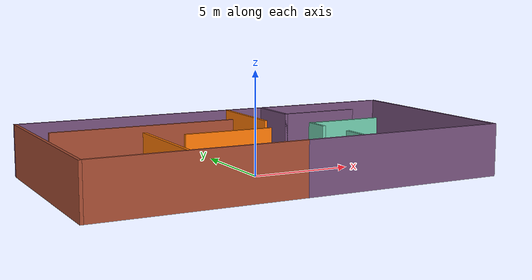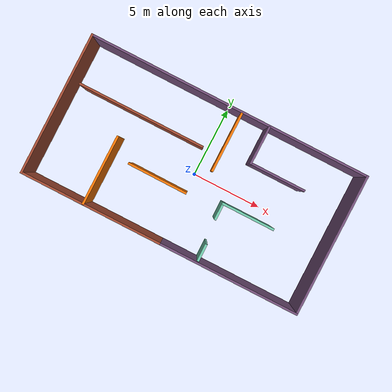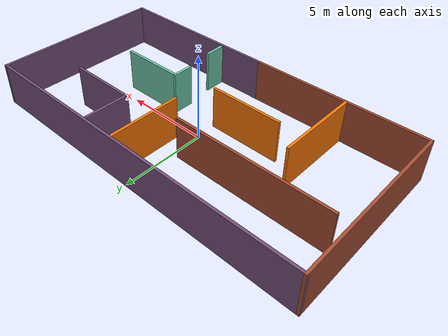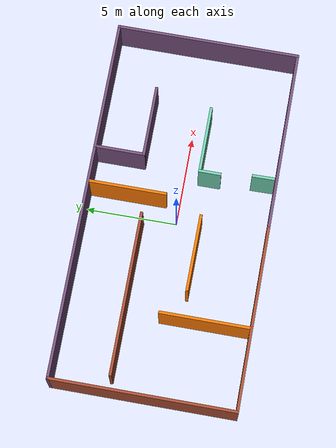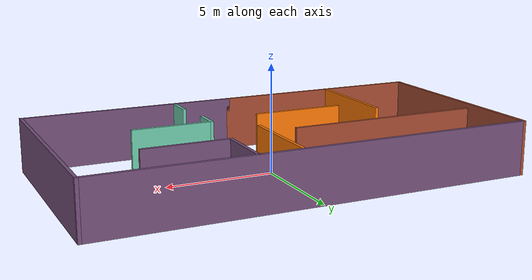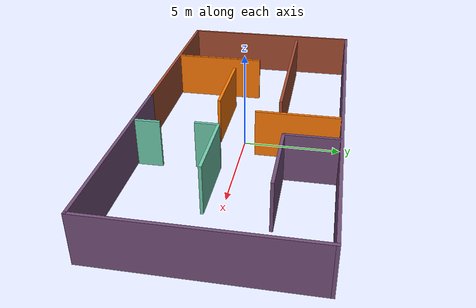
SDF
<?xml version='1.0'?>
<sdf version='1.6'>
  <model name='Environment'>
    <link name='Wall_10'>
      <pose frame=''>0.922209 2.8186 0 0 0 -1.5708</pose>
      <self_collide>0</self_collide>
      <enable_wind>0</enable_wind>
      <kinematic>0</kinematic>
      <visual name='Wall_10_Visual'>
        <pose frame=''>0 0 1.25 0 -0 0</pose>
        <geometry>
          <box>
            <size>4.25 0.15 2.5</size>
          </box>
        </geometry>
        <material>
          <script>
            <uri>file://media/materials/scripts/gazebo.material</uri>
            <name>Gazebo/Grey</name>
          </script>
          <ambient>0.996078 0.47451 0.0196078 1</ambient>
          <shader type='pixel'/>
        </material>
        <meta>
          <layer>0</layer>
        </meta>
        <transparency>0</transparency>
        <cast_shadows>1</cast_shadows>
      </visual>
      <collision name='Wall_10_Collision'>
        <laser_retro>0</laser_retro>
        <max_contacts>10</max_contacts>
        <pose frame=''>0 0 1.25 0 -0 0</pose>
        <geometry>
          <box>
            <size>4.25 0.15 2.5</size>
          </box>
        </geometry>
        <surface>
          <friction>
            <ode>
              <mu>1</mu>
              <mu2>1</mu2>
              <fdir1>0 0 0</fdir1>
              <slip1>0</slip1>
              <slip2>0</slip2>
            </ode>
            <torsional>
              <coefficient>1</coefficient>
              <patch_radius>0</patch_radius>
              <surface_radius>0</surface_radius>
              <use_patch_radius>1</use_patch_radius>
              <ode>
                <slip>0</slip>
              </ode>
            </torsional>
          </friction>
          <bounce>
            <restitution_coefficient>0</restitution_coefficient>
            <threshold>1e+06</threshold>
          </bounce>
          <contact>
            <collide_without_contact>0</collide_without_contact>
            <collide_without_contact_bitmask>1</collide_without_contact_bitmask>
            <collide_bitmask>1</collide_bitmask>
            <ode>
              <soft_cfm>0</soft_cfm>
              <soft_erp>0.2</soft_erp>
              <kp>1e+13</kp>
              <kd>1</kd>
              <max_vel>0.01</max_vel>
              <min_depth>0</min_depth>
            </ode>
            <bullet>
              <split_impulse>1</split_impulse>
              <split_impulse_penetration_threshold>-0.01</split_impulse_penetration_threshold>
              <soft_cfm>0</soft_cfm>
              <soft_erp>0.2</soft_erp>
              <kp>1e+13</kp>
              <kd>1</kd>
            </bullet>
          </contact>
        </surface>
      </collision>
    </link>
    <link name='Wall_10_clone'>
      <pose frame=''>-2.02038 -1.31568 0 0 -0 3.13656</pose>
      <self_collide>0</self_collide>
      <enable_wind>0</enable_wind>
      <kinematic>0</kinematic>
      <visual name='Wall_10_Visual'>
        <pose frame=''>0 0 1.25 0 -0 0</pose>
        <geometry>
          <box>
            <size>4.25 0.15 2.5</size>
          </box>
        </geometry>
        <material>
          <script>
            <uri>file://media/materials/scripts/gazebo.material</uri>
            <name>Gazebo/Grey</name>
          </script>
          <ambient>0.996078 0.47451 0.0196078 1</ambient>
          <shader type='pixel'/>
        </material>
        <meta>
          <layer>0</layer>
        </meta>
        <transparency>0</transparency>
        <cast_shadows>1</cast_shadows>
      </visual>
      <collision name='Wall_10_Collision'>
        <laser_retro>0</laser_retro>
        <max_contacts>10</max_contacts>
        <pose frame=''>0 0 1.25 0 -0 0</pose>
        <geometry>
          <box>
            <size>4.25 0.15 2.5</size>
          </box>
        </geometry>
        <surface>
          <friction>
            <ode>
              <mu>1</mu>
              <mu2>1</mu2>
              <fdir1>0 0 0</fdir1>
              <slip1>0</slip1>
              <slip2>0</slip2>
            </ode>
            <torsional>
              <coefficient>1</coefficient>
              <patch_radius>0</patch_radius>
              <surface_radius>0</surface_radius>
              <use_patch_radius>1</use_patch_radius>
              <ode>
                <slip>0</slip>
              </ode>
            </torsional>
          </friction>
          <bounce>
            <restitution_coefficient>0</restitution_coefficient>
            <threshold>1e+06</threshold>
          </bounce>
          <contact>
            <collide_without_contact>0</collide_without_contact>
            <collide_without_contact_bitmask>1</collide_without_contact_bitmask>
            <collide_bitmask>1</collide_bitmask>
            <ode>
              <soft_cfm>0</soft_cfm>
              <soft_erp>0.2</soft_erp>
              <kp>1e+13</kp>
              <kd>1</kd>
              <max_vel>0.01</max_vel>
              <min_depth>0</min_depth>
            </ode>
            <bullet>
              <split_impulse>1</split_impulse>
              <split_impulse_penetration_threshold>-0.01</split_impulse_penetration_threshold>
              <soft_cfm>0</soft_cfm>
              <soft_erp>0.2</soft_erp>
              <kp>1e+13</kp>
              <kd>1</kd>
            </bullet>
          </contact>
        </surface>
      </collision>
    </link>
    <link name='Wall_12'>
      <pose frame=''>2.52377 -1.37582 0 0 -0 1.5708</pose>
      <self_collide>0</self_collide>
      <enable_wind>0</enable_wind>
      <kinematic>0</kinematic>
      <visual name='Wall_12_Visual'>
        <pose frame=''>0 0 1.25 0 -0 0</pose>
        <geometry>
          <box>
            <size>1.25 0.15 2.5</size>
          </box>
        </geometry>
        <material>
          <script>
            <uri>file://media/materials/scripts/gazebo.material</uri>
            <name>Gazebo/Grey</name>
          </script>
          <ambient>0.435294 0.796078 0.67451 1</ambient>
          <shader type='pixel'/>
        </material>
        <meta>
          <layer>0</layer>
        </meta>
        <transparency>0</transparency>
        <cast_shadows>1</cast_shadows>
      </visual>
      <collision name='Wall_12_Collision'>
        <laser_retro>0</laser_retro>
        <max_contacts>10</max_contacts>
        <pose frame=''>0 0 1.25 0 -0 0</pose>
        <geometry>
          <box>
            <size>1.25 0.15 2.5</size>
          </box>
        </geometry>
        <surface>
          <friction>
            <ode>
              <mu>1</mu>
              <mu2>1</mu2>
              <fdir1>0 0 0</fdir1>
              <slip1>0</slip1>
              <slip2>0</slip2>
            </ode>
            <torsional>
              <coefficient>1</coefficient>
              <patch_radius>0</patch_radius>
              <surface_radius>0</surface_radius>
              <use_patch_radius>1</use_patch_radius>
              <ode>
                <slip>0</slip>
              </ode>
            </torsional>
          </friction>
          <bounce>
            <restitution_coefficient>0</restitution_coefficient>
            <threshold>1e+06</threshold>
          </bounce>
          <contact>
            <collide_without_contact>0</collide_without_contact>
            <collide_without_contact_bitmask>1</collide_without_contact_bitmask>
            <collide_bitmask>1</collide_bitmask>
            <ode>
              <soft_cfm>0</soft_cfm>
              <soft_erp>0.2</soft_erp>
              <kp>1e+13</kp>
              <kd>1</kd>
              <max_vel>0.01</max_vel>
              <min_depth>0</min_depth>
            </ode>
            <bullet>
              <split_impulse>1</split_impulse>
              <split_impulse_penetration_threshold>-0.01</split_impulse_penetration_threshold>
              <soft_cfm>0</soft_cfm>
              <soft_erp>0.2</soft_erp>
              <kp>1e+13</kp>
              <kd>1</kd>
            </bullet>
          </contact>
        </surface>
      </collision>
    </link>
    <link name='Wall_12_clone'>
      <pose frame=''>2.75738 -4.2668 0 0 0 -1.55728</pose>
      <self_collide>0</self_collide>
      <enable_wind>0</enable_wind>
      <kinematic>0</kinematic>
      <visual name='Wall_12_Visual'>
        <pose frame=''>0 0 1.25 0 -0 0</pose>
        <geometry>
          <box>
            <size>1.25 0.15 2.5</size>
          </box>
        </geometry>
        <material>
          <script>
            <uri>file://media/materials/scripts/gazebo.material</uri>
            <name>Gazebo/Grey</name>
          </script>
          <ambient>0.435294 0.796078 0.67451 1</ambient>
          <shader type='pixel'/>
        </material>
        <meta>
          <layer>0</layer>
        </meta>
        <transparency>0</transparency>
        <cast_shadows>1</cast_shadows>
      </visual>
      <collision name='Wall_12_Collision'>
        <laser_retro>0</laser_retro>
        <max_contacts>10</max_contacts>
        <pose frame=''>0 0 1.25 0 -0 0</pose>
        <geometry>
          <box>
            <size>1.25 0.15 2.5</size>
          </box>
        </geometry>
        <surface>
          <friction>
            <ode>
              <mu>1</mu>
              <mu2>1</mu2>
              <fdir1>0 0 0</fdir1>
              <slip1>0</slip1>
              <slip2>0</slip2>
            </ode>
            <torsional>
              <coefficient>1</coefficient>
              <patch_radius>0</patch_radius>
              <surface_radius>0</surface_radius>
              <use_patch_radius>1</use_patch_radius>
              <ode>
                <slip>0</slip>
              </ode>
            </torsional>
          </friction>
          <bounce>
            <restitution_coefficient>0</restitution_coefficient>
            <threshold>1e+06</threshold>
          </bounce>
          <contact>
            <collide_without_contact>0</collide_without_contact>
            <collide_without_contact_bitmask>1</collide_without_contact_bitmask>
            <collide_bitmask>1</collide_bitmask>
            <ode>
              <soft_cfm>0</soft_cfm>
              <soft_erp>0.2</soft_erp>
              <kp>1e+13</kp>
              <kd>1</kd>
              <max_vel>0.01</max_vel>
              <min_depth>0</min_depth>
            </ode>
            <bullet>
              <split_impulse>1</split_impulse>
              <split_impulse_penetration_threshold>-0.01</split_impulse_penetration_threshold>
              <soft_cfm>0</soft_cfm>
              <soft_erp>0.2</soft_erp>
              <kp>1e+13</kp>
              <kd>1</kd>
            </bullet>
          </contact>
        </surface>
      </collision>
    </link>
    <link name='Wall_13'>
      <pose frame=''>4.32377 -0.825824 0 0 -0 0</pose>
      <self_collide>0</self_collide>
      <enable_wind>0</enable_wind>
      <kinematic>0</kinematic>
      <visual name='Wall_13_Visual'>
        <pose frame=''>0 0 1.25 0 -0 0</pose>
        <geometry>
          <box>
            <size>3.75 0.15 2.5</size>
          </box>
        </geometry>
        <material>
          <script>
            <uri>file://media/materials/scripts/gazebo.material</uri>
            <name>Gazebo/Grey</name>
          </script>
          <ambient>0.435294 0.796078 0.67451 1</ambient>
          <shader type='pixel'/>
        </material>
        <meta>
          <layer>0</layer>
        </meta>
        <transparency>0</transparency>
        <cast_shadows>1</cast_shadows>
      </visual>
      <collision name='Wall_13_Collision'>
        <laser_retro>0</laser_retro>
        <max_contacts>10</max_contacts>
        <pose frame=''>0 0 1.25 0 -0 0</pose>
        <geometry>
          <box>
            <size>3.75 0.15 2.5</size>
          </box>
        </geometry>
        <surface>
          <friction>
            <ode>
              <mu>1</mu>
              <mu2>1</mu2>
              <fdir1>0 0 0</fdir1>
              <slip1>0</slip1>
              <slip2>0</slip2>
            </ode>
            <torsional>
              <coefficient>1</coefficient>
              <patch_radius>0</patch_radius>
              <surface_radius>0</surface_radius>
              <use_patch_radius>1</use_patch_radius>
              <ode>
                <slip>0</slip>
              </ode>
            </torsional>
          </friction>
          <bounce>
            <restitution_coefficient>0</restitution_coefficient>
            <threshold>1e+06</threshold>
          </bounce>
          <contact>
            <collide_without_contact>0</collide_without_contact>
            <collide_without_contact_bitmask>1</collide_without_contact_bitmask>
            <collide_bitmask>1</collide_bitmask>
            <ode>
              <soft_cfm>0</soft_cfm>
              <soft_erp>0.2</soft_erp>
              <kp>1e+13</kp>
              <kd>1</kd>
              <max_vel>0.01</max_vel>
              <min_depth>0</min_depth>
            </ode>
            <bullet>
              <split_impulse>1</split_impulse>
              <split_impulse_penetration_threshold>-0.01</split_impulse_penetration_threshold>
              <soft_cfm>0</soft_cfm>
              <soft_erp>0.2</soft_erp>
              <kp>1e+13</kp>
              <kd>1</kd>
            </bullet>
          </contact>
        </surface>
      </collision>
    </link>
    <link name='Wall_15'>
      <pose frame=''>2.91402 3.61812 0 0 0 -1.5708</pose>
      <self_collide>0</self_collide>
      <enable_wind>0</enable_wind>
      <kinematic>0</kinematic>
      <visual name='Wall_15_Visual'>
        <pose frame=''>0 0 1.25 0 -0 0</pose>
        <geometry>
          <box>
            <size>2.75 0.15 2.5</size>
          </box>
        </geometry>
        <material>
          <script>
            <uri>file://media/materials/scripts/gazebo.material</uri>
            <name>Gazebo/Grey</name>
          </script>
          <ambient>0.458824 0.313726 0.482353 1</ambient>
          <shader type='pixel'/>
        </material>
        <meta>
          <layer>0</layer>
        </meta>
        <transparency>0</transparency>
        <cast_shadows>1</cast_shadows>
      </visual>
      <collision name='Wall_15_Collision'>
        <laser_retro>0</laser_retro>
        <max_contacts>10</max_contacts>
        <pose frame=''>0 0 1.25 0 -0 0</pose>
        <geometry>
          <box>
            <size>2.75 0.15 2.5</size>
          </box>
        </geometry>
        <surface>
          <friction>
            <ode>
              <mu>1</mu>
              <mu2>1</mu2>
              <fdir1>0 0 0</fdir1>
              <slip1>0</slip1>
              <slip2>0</slip2>
            </ode>
            <torsional>
              <coefficient>1</coefficient>
              <patch_radius>0</patch_radius>
              <surface_radius>0</surface_radius>
              <use_patch_radius>1</use_patch_radius>
              <ode>
                <slip>0</slip>
              </ode>
            </torsional>
          </friction>
          <bounce>
            <restitution_coefficient>0</restitution_coefficient>
            <threshold>1e+06</threshold>
          </bounce>
          <contact>
            <collide_without_contact>0</collide_without_contact>
            <collide_without_contact_bitmask>1</collide_without_contact_bitmask>
            <collide_bitmask>1</collide_bitmask>
            <ode>
              <soft_cfm>0</soft_cfm>
              <soft_erp>0.2</soft_erp>
              <kp>1e+13</kp>
              <kd>1</kd>
              <max_vel>0.01</max_vel>
              <min_depth>0</min_depth>
            </ode>
            <bullet>
              <split_impulse>1</split_impulse>
              <split_impulse_penetration_threshold>-0.01</split_impulse_penetration_threshold>
              <soft_cfm>0</soft_cfm>
              <soft_erp>0.2</soft_erp>
              <kp>1e+13</kp>
              <kd>1</kd>
            </bullet>
          </contact>
        </surface>
      </collision>
    </link>
    <link name='Wall_16'>
      <pose frame=''>4.83902 2.31812 0 0 -0 0</pose>
      <self_collide>0</self_collide>
      <enable_wind>0</enable_wind>
      <kinematic>0</kinematic>
      <visual name='Wall_16_Visual'>
        <pose frame=''>0 0 1.25 0 -0 0</pose>
        <geometry>
          <box>
            <size>4 0.15 2.5</size>
          </box>
        </geometry>
        <material>
          <script>
            <uri>file://media/materials/scripts/gazebo.material</uri>
            <name>Gazebo/Grey</name>
          </script>
          <ambient>0.458824 0.313726 0.482353 1</ambient>
          <shader type='pixel'/>
        </material>
        <meta>
          <layer>0</layer>
        </meta>
        <transparency>0</transparency>
        <cast_shadows>1</cast_shadows>
      </visual>
      <collision name='Wall_16_Collision'>
        <laser_retro>0</laser_retro>
        <max_contacts>10</max_contacts>
        <pose frame=''>0 0 1.25 0 -0 0</pose>
        <geometry>
          <box>
            <size>4 0.15 2.5</size>
          </box>
        </geometry>
        <surface>
          <friction>
            <ode>
              <mu>1</mu>
              <mu2>1</mu2>
              <fdir1>0 0 0</fdir1>
              <slip1>0</slip1>
              <slip2>0</slip2>
            </ode>
            <torsional>
              <coefficient>1</coefficient>
              <patch_radius>0</patch_radius>
              <surface_radius>0</surface_radius>
              <use_patch_radius>1</use_patch_radius>
              <ode>
                <slip>0</slip>
              </ode>
            </torsional>
          </friction>
          <bounce>
            <restitution_coefficient>0</restitution_coefficient>
            <threshold>1e+06</threshold>
          </bounce>
          <contact>
            <collide_without_contact>0</collide_without_contact>
            <collide_without_contact_bitmask>1</collide_without_contact_bitmask>
            <collide_bitmask>1</collide_bitmask>
            <ode>
              <soft_cfm>0</soft_cfm>
              <soft_erp>0.2</soft_erp>
              <kp>1e+13</kp>
              <kd>1</kd>
              <max_vel>0.01</max_vel>
              <min_depth>0</min_depth>
            </ode>
            <bullet>
              <split_impulse>1</split_impulse>
              <split_impulse_penetration_threshold>-0.01</split_impulse_penetration_threshold>
              <soft_cfm>0</soft_cfm>
              <soft_erp>0.2</soft_erp>
              <kp>1e+13</kp>
              <kd>1</kd>
            </bullet>
          </contact>
        </surface>
      </collision>
    </link>
    <link name='Wall_18'>
      <pose frame=''>-5.52889 -2.53744 0 0 0 -1.5708</pose>
      <self_collide>0</self_collide>
      <enable_wind>0</enable_wind>
      <kinematic>0</kinematic>
      <visual name='Wall_18_Visual'>
        <pose frame=''>0 0 1.25 0 -0 0</pose>
        <geometry>
          <box>
            <size>5 0.15 2.5</size>
          </box>
        </geometry>
        <material>
          <script>
            <uri>file://media/materials/scripts/gazebo.material</uri>
            <name>Gazebo/Grey</name>
          </script>
          <ambient>0.996078 0.47451 0.0196078 1</ambient>
          <shader type='pixel'/>
        </material>
        <meta>
          <layer>0</layer>
        </meta>
        <transparency>0</transparency>
        <cast_shadows>1</cast_shadows>
      </visual>
      <collision name='Wall_18_Collision'>
        <laser_retro>0</laser_retro>
        <max_contacts>10</max_contacts>
        <pose frame=''>0 0 1.25 0 -0 0</pose>
        <geometry>
          <box>
            <size>5 0.15 2.5</size>
          </box>
        </geometry>
        <surface>
          <friction>
            <ode>
              <mu>1</mu>
              <mu2>1</mu2>
              <fdir1>0 0 0</fdir1>
              <slip1>0</slip1>
              <slip2>0</slip2>
            </ode>
            <torsional>
              <coefficient>1</coefficient>
              <patch_radius>0</patch_radius>
              <surface_radius>0</surface_radius>
              <use_patch_radius>1</use_patch_radius>
              <ode>
                <slip>0</slip>
              </ode>
            </torsional>
          </friction>
          <bounce>
            <restitution_coefficient>0</restitution_coefficient>
            <threshold>1e+06</threshold>
          </bounce>
          <contact>
            <collide_without_contact>0</collide_without_contact>
            <collide_without_contact_bitmask>1</collide_without_contact_bitmask>
            <collide_bitmask>1</collide_bitmask>
            <ode>
              <soft_cfm>0</soft_cfm>
              <soft_erp>0.2</soft_erp>
              <kp>1e+13</kp>
              <kd>1</kd>
              <max_vel>0.01</max_vel>
              <min_depth>0</min_depth>
            </ode>
            <bullet>
              <split_impulse>1</split_impulse>
              <split_impulse_penetration_threshold>-0.01</split_impulse_penetration_threshold>
              <soft_cfm>0</soft_cfm>
              <soft_erp>0.2</soft_erp>
              <kp>1e+13</kp>
              <kd>1</kd>
            </bullet>
          </contact>
        </surface>
      </collision>
    </link>
    <link name='Wall_2'>
      <pose frame=''>-10 0 0 0 0 -1.5708</pose>
      <self_collide>0</self_collide>
      <enable_wind>0</enable_wind>
      <kinematic>0</kinematic>
      <visual name='Wall_2_Visual'>
        <pose frame=''>0 0 1.25 0 -0 0</pose>
        <geometry>
          <box>
            <size>10.1501 0.15 2.5</size>
          </box>
        </geometry>
        <material>
          <script>
            <uri>file://media/materials/scripts/gazebo.material</uri>
            <name>Gazebo/Bricks</name>
          </script>
          <ambient>1 1 1 1</ambient>
          <shader type='pixel'/>
        </material>
        <meta>
          <layer>0</layer>
        </meta>
        <transparency>0</transparency>
        <cast_shadows>1</cast_shadows>
      </visual>
      <collision name='Wall_2_Collision'>
        <laser_retro>0</laser_retro>
        <max_contacts>10</max_contacts>
        <pose frame=''>0 0 1.25 0 -0 0</pose>
        <geometry>
          <box>
            <size>10.1501 0.15 2.5</size>
          </box>
        </geometry>
        <surface>
          <friction>
            <ode>
              <mu>1</mu>
              <mu2>1</mu2>
              <fdir1>0 0 0</fdir1>
              <slip1>0</slip1>
              <slip2>0</slip2>
            </ode>
            <torsional>
              <coefficient>1</coefficient>
              <patch_radius>0</patch_radius>
              <surface_radius>0</surface_radius>
              <use_patch_radius>1</use_patch_radius>
              <ode>
                <slip>0</slip>
              </ode>
            </torsional>
          </friction>
          <bounce>
            <restitution_coefficient>0</restitution_coefficient>
            <threshold>1e+06</threshold>
          </bounce>
          <contact>
            <collide_without_contact>0</collide_without_contact>
            <collide_without_contact_bitmask>1</collide_without_contact_bitmask>
            <collide_bitmask>1</collide_bitmask>
            <ode>
              <soft_cfm>0</soft_cfm>
              <soft_erp>0.2</soft_erp>
              <kp>1e+13</kp>
              <kd>1</kd>
              <max_vel>0.01</max_vel>
              <min_depth>0</min_depth>
            </ode>
            <bullet>
              <split_impulse>1</split_impulse>
              <split_impulse_penetration_threshold>-0.01</split_impulse_penetration_threshold>
              <soft_cfm>0</soft_cfm>
              <soft_erp>0.2</soft_erp>
              <kp>1e+13</kp>
              <kd>1</kd>
            </bullet>
          </contact>
        </surface>
      </collision>
    </link>
    <link name='Wall_3'>
      <pose frame=''>-5 -5 0 0 -0 0</pose>
      <self_collide>0</self_collide>
      <enable_wind>0</enable_wind>
      <kinematic>0</kinematic>
      <visual name='Wall_3_Visual'>
        <pose frame=''>0 0 1.25 0 -0 0</pose>
        <geometry>
          <box>
            <size>10.15 0.15 2.5</size>
          </box>
        </geometry>
        <material>
          <script>
            <uri>file://media/materials/scripts/gazebo.material</uri>
            <name>Gazebo/Bricks</name>
          </script>
          <ambient>1 1 1 1</ambient>
          <shader type='pixel'/>
        </material>
        <meta>
          <layer>0</layer>
        </meta>
        <transparency>0</transparency>
        <cast_shadows>1</cast_shadows>
      </visual>
      <collision name='Wall_3_Collision'>
        <laser_retro>0</laser_retro>
        <max_contacts>10</max_contacts>
        <pose frame=''>0 0 1.25 0 -0 0</pose>
        <geometry>
          <box>
            <size>10.15 0.15 2.5</size>
          </box>
        </geometry>
        <surface>
          <friction>
            <ode>
              <mu>1</mu>
              <mu2>1</mu2>
              <fdir1>0 0 0</fdir1>
              <slip1>0</slip1>
              <slip2>0</slip2>
            </ode>
            <torsional>
              <coefficient>1</coefficient>
              <patch_radius>0</patch_radius>
              <surface_radius>0</surface_radius>
              <use_patch_radius>1</use_patch_radius>
              <ode>
                <slip>0</slip>
              </ode>
            </torsional>
          </friction>
          <bounce>
            <restitution_coefficient>0</restitution_coefficient>
            <threshold>1e+06</threshold>
          </bounce>
          <contact>
            <collide_without_contact>0</collide_without_contact>
            <collide_without_contact_bitmask>1</collide_without_contact_bitmask>
            <collide_bitmask>1</collide_bitmask>
            <ode>
              <soft_cfm>0</soft_cfm>
              <soft_erp>0.2</soft_erp>
              <kp>1e+13</kp>
              <kd>1</kd>
              <max_vel>0.01</max_vel>
              <min_depth>0</min_depth>
            </ode>
            <bullet>
              <split_impulse>1</split_impulse>
              <split_impulse_penetration_threshold>-0.01</split_impulse_penetration_threshold>
              <soft_cfm>0</soft_cfm>
              <soft_erp>0.2</soft_erp>
              <kp>1e+13</kp>
              <kd>1</kd>
            </bullet>
          </contact>
        </surface>
      </collision>
    </link>
    <link name='Wall_4'>
      <pose frame=''>5 -5 0 0 -0 0</pose>
      <self_collide>0</self_collide>
      <enable_wind>0</enable_wind>
      <kinematic>0</kinematic>
      <visual name='Wall_4_Visual'>
        <pose frame=''>0 0 1.25 0 -0 0</pose>
        <geometry>
          <box>
            <size>10.15 0.15 2.5</size>
          </box>
        </geometry>
        <material>
          <script>
            <uri>file://media/materials/scripts/gazebo.material</uri>
            <name>Gazebo/Grey</name>
          </script>
          <ambient>0.458824 0.313726 0.482353 1</ambient>
          <shader type='pixel'/>
        </material>
        <meta>
          <layer>0</layer>
        </meta>
        <transparency>0</transparency>
        <cast_shadows>1</cast_shadows>
      </visual>
      <collision name='Wall_4_Collision'>
        <laser_retro>0</laser_retro>
        <max_contacts>10</max_contacts>
        <pose frame=''>0 0 1.25 0 -0 0</pose>
        <geometry>
          <box>
            <size>10.15 0.15 2.5</size>
          </box>
        </geometry>
        <surface>
          <friction>
            <ode>
              <mu>1</mu>
              <mu2>1</mu2>
              <fdir1>0 0 0</fdir1>
              <slip1>0</slip1>
              <slip2>0</slip2>
            </ode>
            <torsional>
              <coefficient>1</coefficient>
              <patch_radius>0</patch_radius>
              <surface_radius>0</surface_radius>
              <use_patch_radius>1</use_patch_radius>
              <ode>
                <slip>0</slip>
              </ode>
            </torsional>
          </friction>
          <bounce>
            <restitution_coefficient>0</restitution_coefficient>
            <threshold>1e+06</threshold>
          </bounce>
          <contact>
            <collide_without_contact>0</collide_without_contact>
            <collide_without_contact_bitmask>1</collide_without_contact_bitmask>
            <collide_bitmask>1</collide_bitmask>
            <ode>
              <soft_cfm>0</soft_cfm>
              <soft_erp>0.2</soft_erp>
              <kp>1e+13</kp>
              <kd>1</kd>
              <max_vel>0.01</max_vel>
              <min_depth>0</min_depth>
            </ode>
            <bullet>
              <split_impulse>1</split_impulse>
              <split_impulse_penetration_threshold>-0.01</split_impulse_penetration_threshold>
              <soft_cfm>0</soft_cfm>
              <soft_erp>0.2</soft_erp>
              <kp>1e+13</kp>
              <kd>1</kd>
            </bullet>
          </contact>
        </surface>
      </collision>
    </link>
    <link name='Wall_5'>
      <pose frame=''>10 -0 0 0 -0 1.5708</pose>
      <self_collide>0</self_collide>
      <enable_wind>0</enable_wind>
      <kinematic>0</kinematic>
      <visual name='Wall_5_Visual'>
        <pose frame=''>0 0 1.25 0 -0 0</pose>
        <geometry>
          <box>
            <size>10.15 0.15 2.5</size>
          </box>
        </geometry>
        <material>
          <script>
            <uri>file://media/materials/scripts/gazebo.material</uri>
            <name>Gazebo/Grey</name>
          </script>
          <ambient>0.458824 0.313726 0.482353 1</ambient>
          <shader type='pixel'/>
        </material>
        <meta>
          <layer>0</layer>
        </meta>
        <transparency>0</transparency>
        <cast_shadows>1</cast_shadows>
      </visual>
      <collision name='Wall_5_Collision'>
        <laser_retro>0</laser_retro>
        <max_contacts>10</max_contacts>
        <pose frame=''>0 0 1.25 0 -0 0</pose>
        <geometry>
          <box>
            <size>10.15 0.15 2.5</size>
          </box>
        </geometry>
        <surface>
          <friction>
            <ode>
              <mu>1</mu>
              <mu2>1</mu2>
              <fdir1>0 0 0</fdir1>
              <slip1>0</slip1>
              <slip2>0</slip2>
            </ode>
            <torsional>
              <coefficient>1</coefficient>
              <patch_radius>0</patch_radius>
              <surface_radius>0</surface_radius>
              <use_patch_radius>1</use_patch_radius>
              <ode>
                <slip>0</slip>
              </ode>
            </torsional>
          </friction>
          <bounce>
            <restitution_coefficient>0</restitution_coefficient>
            <threshold>1e+06</threshold>
          </bounce>
          <contact>
            <collide_without_contact>0</collide_without_contact>
            <collide_without_contact_bitmask>1</collide_without_contact_bitmask>
            <collide_bitmask>1</collide_bitmask>
            <ode>
              <soft_cfm>0</soft_cfm>
              <soft_erp>0.2</soft_erp>
              <kp>1e+13</kp>
              <kd>1</kd>
              <max_vel>0.01</max_vel>
              <min_depth>0</min_depth>
            </ode>
            <bullet>
              <split_impulse>1</split_impulse>
              <split_impulse_penetration_threshold>-0.01</split_impulse_penetration_threshold>
              <soft_cfm>0</soft_cfm>
              <soft_erp>0.2</soft_erp>
              <kp>1e+13</kp>
              <kd>1</kd>
            </bullet>
          </contact>
        </surface>
      </collision>
    </link>
    <link name='Wall_6'>
      <pose frame=''>0 5 0 0 -0 3.14159</pose>
      <self_collide>0</self_collide>
      <enable_wind>0</enable_wind>
      <kinematic>0</kinematic>
      <visual name='Wall_6_Visual'>
        <pose frame=''>0 0 1.25 0 -0 0</pose>
        <geometry>
          <box>
            <size>20.15 0.15 2.5</size>
          </box>
        </geometry>
        <material>
          <script>
            <uri>file://media/materials/scripts/gazebo.material</uri>
            <name>Gazebo/Grey</name>
          </script>
          <ambient>0.458824 0.313726 0.482353 1</ambient>
          <shader type='pixel'/>
        </material>
        <meta>
          <layer>0</layer>
        </meta>
        <transparency>0</transparency>
        <cast_shadows>1</cast_shadows>
      </visual>
      <collision name='Wall_6_Collision'>
        <laser_retro>0</laser_retro>
        <max_contacts>10</max_contacts>
        <pose frame=''>0 0 1.25 0 -0 0</pose>
        <geometry>
          <box>
            <size>20.15 0.15 2.5</size>
          </box>
        </geometry>
        <surface>
          <friction>
            <ode>
              <mu>1</mu>
              <mu2>1</mu2>
              <fdir1>0 0 0</fdir1>
              <slip1>0</slip1>
              <slip2>0</slip2>
            </ode>
            <torsional>
              <coefficient>1</coefficient>
              <patch_radius>0</patch_radius>
              <surface_radius>0</surface_radius>
              <use_patch_radius>1</use_patch_radius>
              <ode>
                <slip>0</slip>
              </ode>
            </torsional>
          </friction>
          <bounce>
            <restitution_coefficient>0</restitution_coefficient>
            <threshold>1e+06</threshold>
          </bounce>
          <contact>
            <collide_without_contact>0</collide_without_contact>
            <collide_without_contact_bitmask>1</collide_without_contact_bitmask>
            <collide_bitmask>1</collide_bitmask>
            <ode>
              <soft_cfm>0</soft_cfm>
              <soft_erp>0.2</soft_erp>
              <kp>1e+13</kp>
              <kd>1</kd>
              <max_vel>0.01</max_vel>
              <min_depth>0</min_depth>
            </ode>
            <bullet>
              <split_impulse>1</split_impulse>
              <split_impulse_penetration_threshold>-0.01</split_impulse_penetration_threshold>
              <soft_cfm>0</soft_cfm>
              <soft_erp>0.2</soft_erp>
              <kp>1e+13</kp>
              <kd>1</kd>
            </bullet>
          </contact>
        </surface>
      </collision>
    </link>
    <link name='Wall_9'>
      <pose frame=''>-4.80678 1.82729 0 0 -0 0</pose>
      <self_collide>0</self_collide>
      <enable_wind>0</enable_wind>
      <kinematic>0</kinematic>
      <visual name='Wall_9_Visual'>
        <pose frame=''>0 0 1.25 0 -0 0</pose>
        <geometry>
          <box>
            <size>9 0.15 2.5</size>
          </box>
        </geometry>
        <material>
          <script>
            <uri>file://media/materials/scripts/gazebo.material</uri>
            <name>Gazebo/Bricks</name>
          </script>
          <ambient>1 1 1 1</ambient>
          <shader type='pixel'/>
        </material>
        <meta>
          <layer>0</layer>
        </meta>
        <transparency>0</transparency>
        <cast_shadows>1</cast_shadows>
      </visual>
      <collision name='Wall_9_Collision'>
        <laser_retro>0</laser_retro>
        <max_contacts>10</max_contacts>
        <pose frame=''>0 0 1.25 0 -0 0</pose>
        <geometry>
          <box>
            <size>9 0.15 2.5</size>
          </box>
        </geometry>
        <surface>
          <friction>
            <ode>
              <mu>1</mu>
              <mu2>1</mu2>
              <fdir1>0 0 0</fdir1>
              <slip1>0</slip1>
              <slip2>0</slip2>
            </ode>
            <torsional>
              <coefficient>1</coefficient>
              <patch_radius>0</patch_radius>
              <surface_radius>0</surface_radius>
              <use_patch_radius>1</use_patch_radius>
              <ode>
                <slip>0</slip>
              </ode>
            </torsional>
          </friction>
          <bounce>
            <restitution_coefficient>0</restitution_coefficient>
            <threshold>1e+06</threshold>
          </bounce>
          <contact>
            <collide_without_contact>0</collide_without_contact>
            <collide_without_contact_bitmask>1</collide_without_contact_bitmask>
            <collide_bitmask>1</collide_bitmask>
            <ode>
              <soft_cfm>0</soft_cfm>
              <soft_erp>0.2</soft_erp>
              <kp>1e+13</kp>
              <kd>1</kd>
              <max_vel>0.01</max_vel>
              <min_depth>0</min_depth>
            </ode>
            <bullet>
              <split_impulse>1</split_impulse>
              <split_impulse_penetration_threshold>-0.01</split_impulse_penetration_threshold>
              <soft_cfm>0</soft_cfm>
              <soft_erp>0.2</soft_erp>
              <kp>1e+13</kp>
              <kd>1</kd>
            </bullet>
          </contact>
        </surface>
      </collision>
    </link>
    <static>1</static>
    <allow_auto_disable>1</allow_auto_disable>
  </model>
</sdf>
